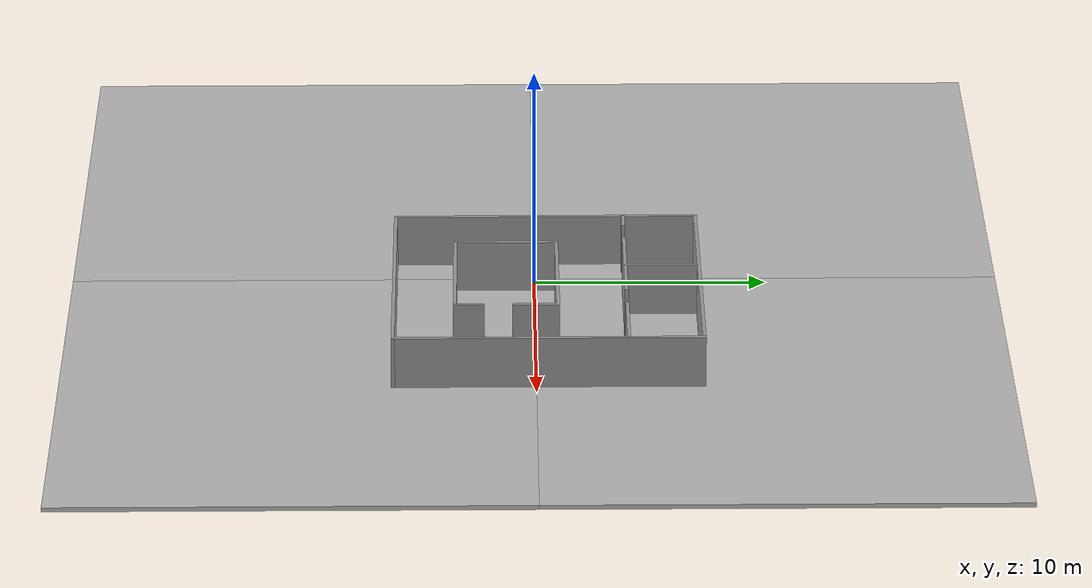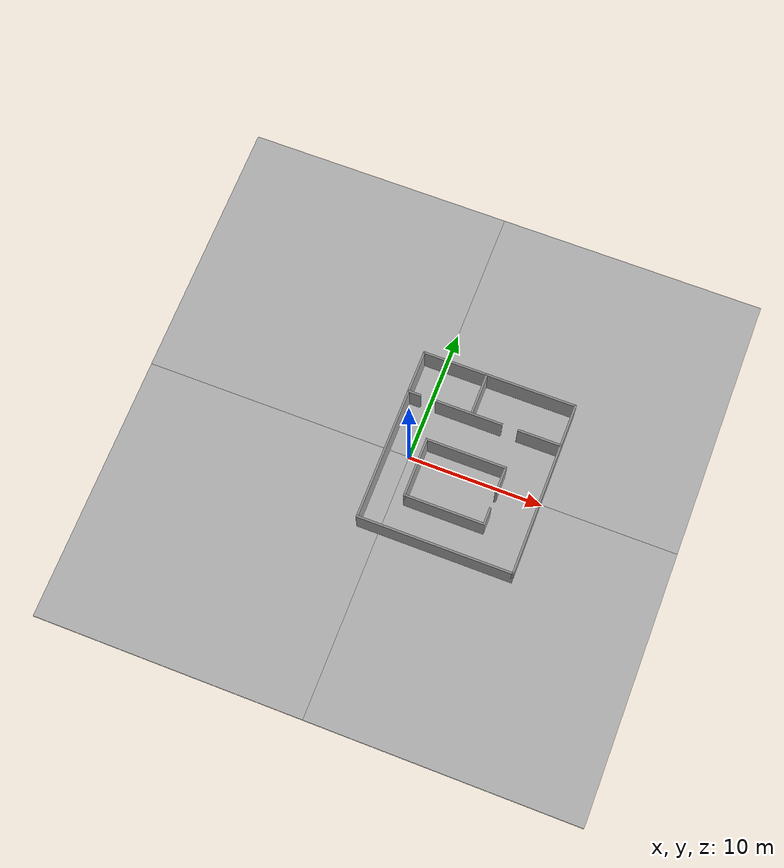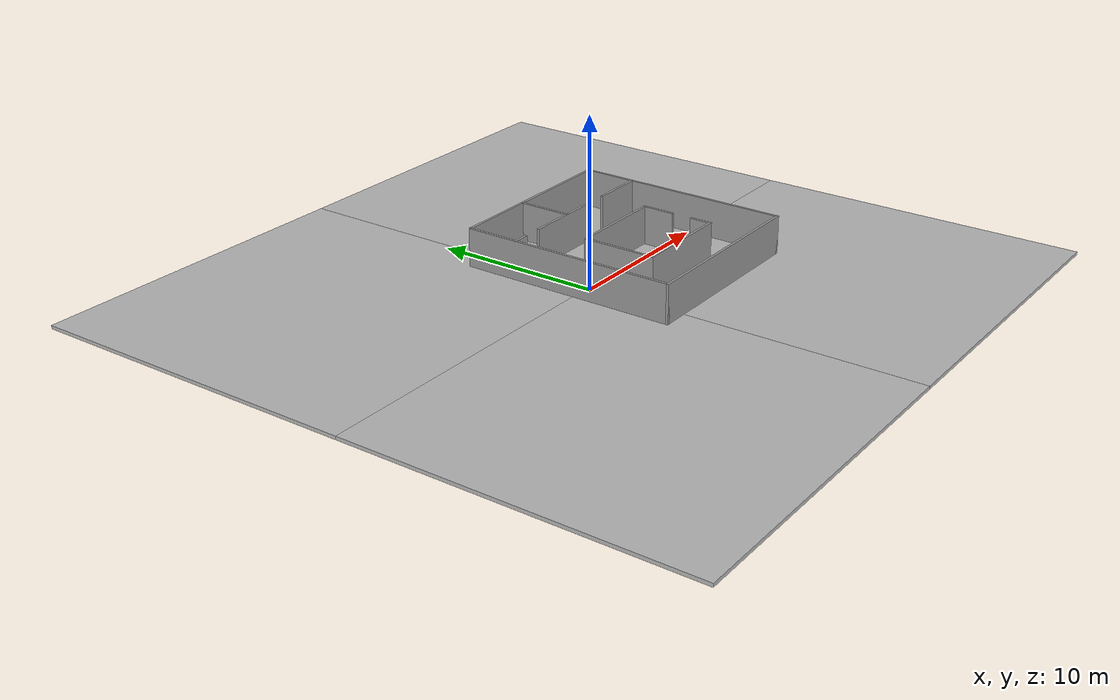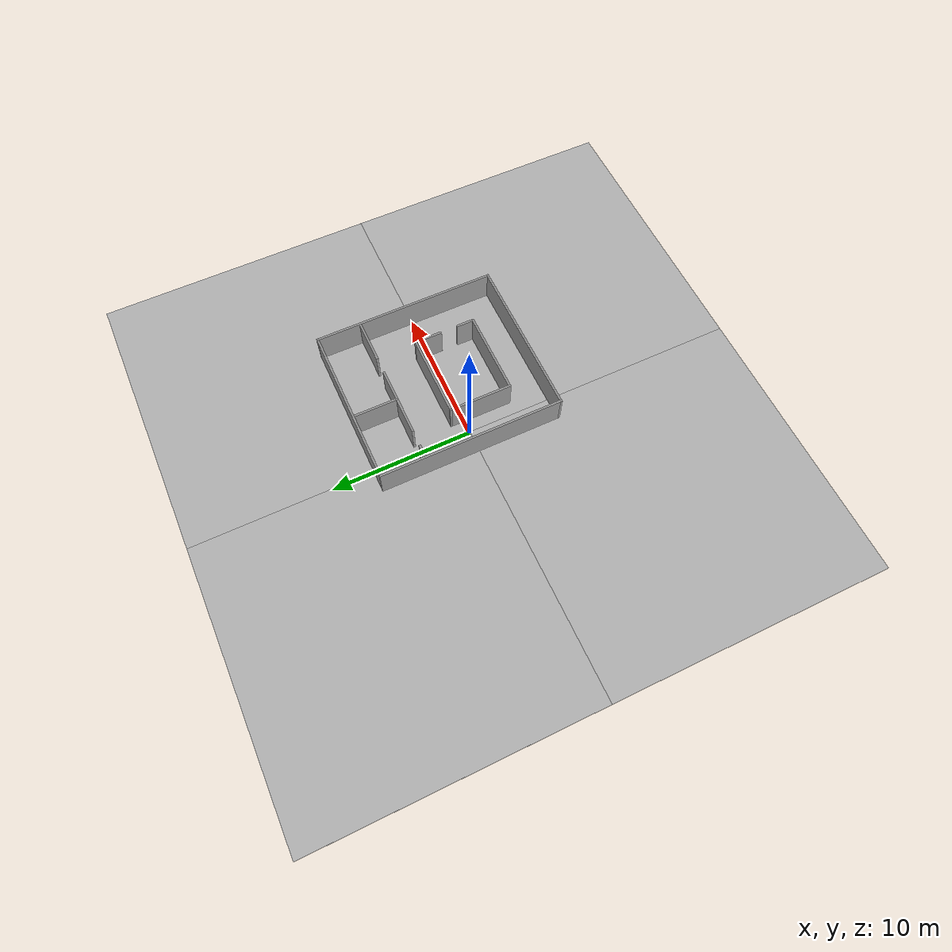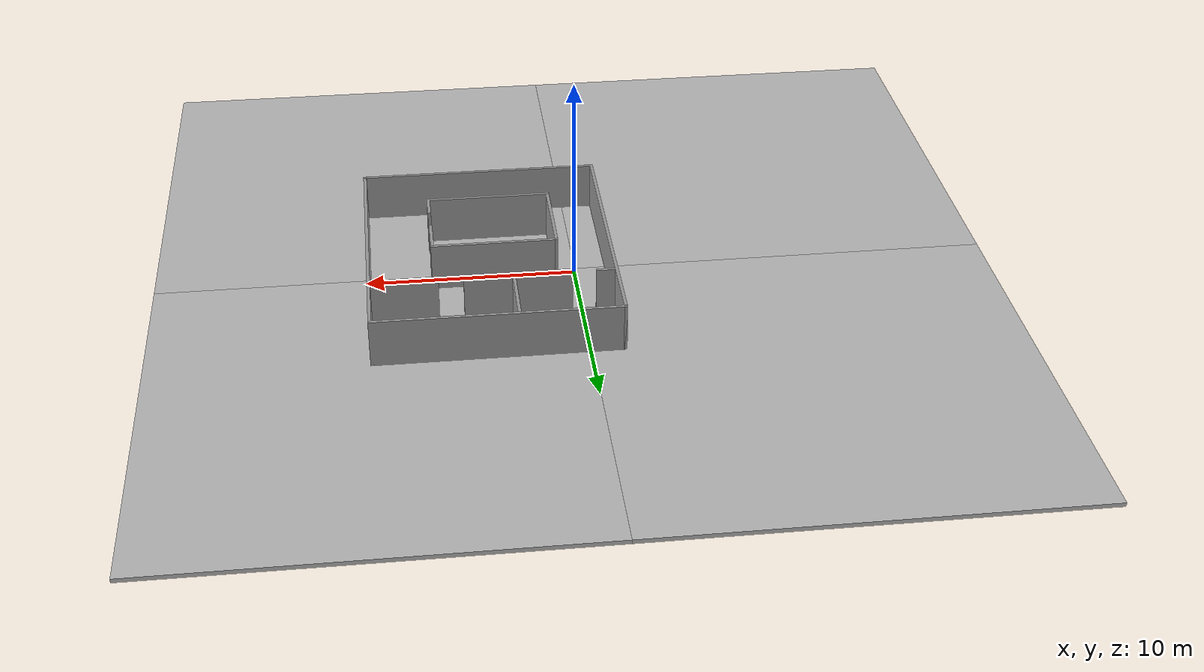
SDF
<sdf version="1.7">
 <world name="default">
  <light name="sun" type="directional">
   <pose>0 0 10 0 -0 0</pose>
   <diffuse>0.8 0.8 0.8 1</diffuse>
   <specular>0.2 0.2 0.2 1</specular>
   <attenuation>
    <range>1000</range>
    <constant>0.9</constant>
    <linear>0.01</linear>
    <quadratic>0.001</quadratic>
   </attenuation>
   <direction>-0.5 0.1 -0.9</direction>
   <spot><inner_angle>0</inner_angle><outer_angle>0</outer_angle><falloff>0</falloff></spot>
  </light>
  <model name="gd1">
   <static>1</static>
   <link name="chassis">
    <pose>10 10 0.1 0 0 0</pose>
    <collision name="collision"><geometry><box><size>20 20 0.2</size></box></geometry></collision>
    <visual name="visual">
     <geometry>
      <mesh><uri>model://ground_surface/meshes/simple_box.dae</uri><scale>20 20 0.2</scale></mesh>
     </geometry>
     <material>
      <script>
       <uri>model://ground_surface/materials/scripts</uri>
       <uri>model://ground_surface/materials/textures</uri>
       <name>BrickBox/Ground</name>
      </script>
     </material>
    </visual>
   </link>
  </model>
  <model name="gd2">
   <static>1</static>
   <link name="chassis">
    <pose>10 -10 0.1 0 0 0</pose>
    <collision name="collision"><geometry><box><size>20 20 0.2</size></box></geometry></collision>
    <visual name="visual">
     <geometry>
      <mesh><uri>model://ground_surface/meshes/simple_box.dae</uri><scale>20 20 0.2</scale></mesh>
     </geometry>
     <material>
      <script>
       <uri>model://ground_surface/materials/scripts</uri>
       <uri>model://ground_surface/materials/textures</uri>
       <name>BrickBox/Ground</name>
      </script>
     </material>
    </visual>
   </link>
  </model>
  <model name="gd3">
   <static>1</static>
   <link name="chassis">
    <pose>-10 10 0.1 0 0 0</pose>
    <collision name="collision"><geometry><box><size>20 20 0.2</size></box></geometry></collision>
    <visual name="visual">
     <geometry>
      <mesh><uri>model://ground_surface/meshes/simple_box.dae</uri><scale>20 20 0.2</scale></mesh>
     </geometry>
     <material>
      <script>
       <uri>model://ground_surface/materials/scripts</uri>
       <uri>model://ground_surface/materials/textures</uri>
       <name>BrickBox/Ground</name>
      </script>
     </material>
    </visual>
   </link>
  </model>
  <model name="gd4">
   <static>1</static>
   <link name="chassis">
    <pose>-10 -10 0.1 0 0 0</pose>
    <collision name="collision"><geometry><box><size>20 20 0.2</size></box></geometry></collision>
    <visual name="visual">
     <geometry>
      <mesh><uri>model://ground_surface/meshes/simple_box.dae</uri><scale>20 20 0.2</scale></mesh>
     </geometry>
     <material>
      <script>
       <uri>model://ground_surface/materials/scripts</uri>
       <uri>model://ground_surface/materials/textures</uri>
       <name>BrickBox/Ground</name>
      </script>
     </material>
     <meta><layer>0</layer></meta>
    </visual>
   </link>
  </model>
  <gravity>0 0 -9.8</gravity>
  <magnetic_field>6e-06 2.3e-05 -4.2e-05</magnetic_field>
  <atmosphere type="adiabatic"/>
  <physics type="ode">
   <max_step_size>0.001</max_step_size>
   <real_time_factor>1</real_time_factor>
   <real_time_update_rate>1000</real_time_update_rate>
  </physics>
  <scene><ambient>0.4 0.4 0.4 1</ambient><background>0.7 0.7 0.7 1</background><shadows>1</shadows></scene>
  <spherical_coordinates>
   <surface_model>EARTH_WGS84</surface_model>
   <latitude_deg>0</latitude_deg>
   <longitude_deg>0</longitude_deg>
   <elevation>0</elevation>
   <heading_deg>0</heading_deg>
  </spherical_coordinates>
  <model name="small_office_new">
   <pose>4.165 0.5 0 0 -0 0</pose>
   <link name="Wall_10">
    <collision name="Wall_10_Collision">
     <geometry><box><size>11.52 0.15 2.5</size></box></geometry>
     <pose>0 0 1.25 0 -0 0</pose>
    </collision>
    <visual name="Wall_10_Visual">
     <pose>0 0 1.25 0 -0 0</pose>
     <geometry><box><size>11.52 0.15 2.5</size></box></geometry>
     <material>
      <script><uri>file://media/materials/scripts/gazebo.material</uri><name>Gazebo/Grey</name></script>
      <ambient>1 1 1 1</ambient>
     </material>
     <meta><layer>0</layer></meta>
    </visual>
    <pose>-0 6.5 0 0 -0 0</pose>
   </link>
   <link name="Wall_12">
    <collision name="Wall_12_Collision">
     <geometry><box><size>0.983 0.15 2.5</size></box></geometry>
     <pose>0 0 1.25 0 -0 0</pose>
    </collision>
    <visual name="Wall_12_Visual">
     <pose>0 0 1.25 0 -0 0</pose>
     <geometry><box><size>0.983 0.15 2.5</size></box></geometry>
     <material>
      <script><uri>file://media/materials/scripts/gazebo.material</uri><name>Gazebo/Grey</name></script>
      <ambient>1 1 1 1</ambient>
     </material>
     <meta><layer>0</layer></meta>
    </visual>
    <pose>-5.2315 3.357 0 0 -0 0</pose>
   </link>
   <link name="Wall_19">
    <collision name="Wall_19_Collision">
     <geometry><box><size>5 0.15 2.5</size></box></geometry>
     <pose>0 0 1.25 0 -0 0</pose>
    </collision>
    <visual name="Wall_19_Visual">
     <pose>0 0 1.25 0 -0 0</pose>
     <geometry><box><size>5 0.15 2.5</size></box></geometry>
     <material>
      <script><uri>file://media/materials/scripts/gazebo.material</uri><name>Gazebo/Grey</name></script>
      <ambient>1 1 1 1</ambient>
     </material>
     <meta><layer>0</layer></meta>
    </visual>
    <pose>-1.14 3.357 0 0 -0 0</pose>
   </link>
   <link name="Wall_23">
    <collision name="Wall_23_Collision">
     <geometry><box><size>3.25 0.15 2.5</size></box></geometry>
     <pose>0 0 1.25 0 -0 0</pose>
    </collision>
    <visual name="Wall_23_Visual">
     <pose>0 0 1.25 0 -0 0</pose>
     <geometry><box><size>3.25 0.15 2.5</size></box></geometry>
     <material>
      <script><uri>file://media/materials/scripts/gazebo.material</uri><name>Gazebo/Grey</name></script>
      <ambient>1 1 1 1</ambient>
     </material>
     <meta><layer>0</layer></meta>
    </visual>
    <pose>4.134 3.357 0 0 -0 0</pose>
   </link>
   <link name="Wall_25">
    <collision name="Wall_25_Collision">
     <geometry><box><size>13.15 0.15 2.5</size></box></geometry>
     <pose>0 0 1.25 0 -0 0</pose>
    </collision>
    <visual name="Wall_25_Visual">
     <pose>0 0 1.25 0 -0 0</pose>
     <geometry><box><size>13.15 0.15 2.5</size></box></geometry>
     <material>
      <script><uri>file://media/materials/scripts/gazebo.material</uri><name>Gazebo/Grey</name></script>
      <ambient>1 1 1 1</ambient>
     </material>
     <meta><layer>0</layer></meta>
    </visual>
    <pose>5.685 0 0 0 -0 -1.5708</pose>
   </link>
   <link name="Wall_27">
    <collision name="Wall_27_Collision">
     <geometry><box><size>3.25 0.15 2.5</size></box></geometry>
     <pose>0 0 1.25 0 -0 0</pose>
    </collision>
    <visual name="Wall_27_Visual">
     <pose>0 0 1.25 0 -0 0</pose>
     <geometry><box><size>3.25 0.15 2.5</size></box></geometry>
     <material>
      <script><uri>file://media/materials/scripts/gazebo.material</uri><name>Gazebo/Grey</name></script>
      <ambient>1 1 1 1</ambient>
     </material>
     <meta><layer>0</layer></meta>
    </visual>
    <pose>-0.944635 4.91602 0 0 -0 -1.5708</pose>
   </link>
   <link name="Wall_29">
    <collision name="Wall_29_Collision">
     <geometry><box><size>4.5 0.15 2.5</size></box></geometry>
     <pose>0 0 1.25 0 -0 0</pose>
    </collision>
    <visual name="Wall_29_Visual">
     <pose>0 0 1.25 0 -0 0</pose>
     <geometry><box><size>4.5 0.15 2.5</size></box></geometry>
     <material>
      <script><uri>file://media/materials/scripts/gazebo.material</uri><name>Gazebo/Grey</name></script>
      <ambient>1 1 1 1</ambient>
     </material>
     <meta><layer>0</layer></meta>
    </visual>
    <pose>-3.20221 -1.73786 0 0 -0 -1.5708</pose>
   </link>
   <link name="Wall_31">
    <collision name="Wall_31_Collision">
     <geometry><box><size>6 0.15 2.5</size></box></geometry>
     <pose>0 0 1.25 0 -0 0</pose>
    </collision>
    <visual name="Wall_31_Visual">
     <pose>0 0 1.25 0 -0 0</pose>
     <geometry><box><size>6 0.15 2.5</size></box></geometry>
     <material>
      <script><uri>file://media/materials/scripts/gazebo.material</uri><name>Gazebo/Grey</name></script>
      <ambient>1 1 1 1</ambient>
     </material>
     <meta><layer>0</layer></meta>
    </visual>
    <pose>-0.277211 0.437136 0 0 -0 0</pose>
   </link>
   <link name="Wall_33">
    <collision name="Wall_33_Collision">
     <geometry><box><size>6 0.15 2.5</size></box></geometry>
     <pose>0 0 1.25 0 -0 0</pose>
    </collision>
    <visual name="Wall_33_Visual">
     <pose>0 0 1.25 0 -0 0</pose>
     <geometry><box><size>6 0.15 2.5</size></box></geometry>
     <material>
      <script><uri>file://media/materials/scripts/gazebo.material</uri><name>Gazebo/Grey</name></script>
      <ambient>1 1 1 1</ambient>
     </material>
     <meta><layer>0</layer></meta>
    </visual>
    <pose>-0.277105 -3.91293 0 0 -0 -2.3e-05</pose>
   </link>
   <link name="Wall_35">
    <collision name="Wall_35_Collision">
     <geometry><box><size>2 0.15 2.5</size></box></geometry>
     <pose>0 0 1.25 0 -0 0</pose>
    </collision>
    <visual name="Wall_35_Visual">
     <pose>0 0 1.25 0 -0 0</pose>
     <geometry><box><size>2 0.15 2.5</size></box></geometry>
     <material>
      <script><uri>file://media/materials/scripts/gazebo.material</uri><name>Gazebo/Grey</name></script>
      <ambient>1 1 1 1</ambient>
     </material>
     <meta><layer>0</layer></meta>
    </visual>
    <pose>2.64779 -0.487864 0 0 -0 -1.5708</pose>
   </link>
   <link name="Wall_39">
    <collision name="Wall_39_Collision">
     <geometry><box><size>1.32954 0.15 2.5</size></box></geometry>
     <pose>0 0 1.25 0 -0 0</pose>
    </collision>
    <visual name="Wall_39_Visual">
     <pose>0 0 1.25 0 -0 0</pose>
     <geometry><box><size>1.32954 0.15 2.5</size></box></geometry>
     <material>
      <script><uri>file://media/materials/scripts/gazebo.material</uri><name>Gazebo/Grey</name></script>
      <ambient>1 1 1 1</ambient>
     </material>
     <meta><layer>0</layer></meta>
    </visual>
    <pose>2.648 -3.323 0 0 -0 -1.5708</pose>
   </link>
   <link name="Wall_41">
    <collision name="Wall_41_Collision">
     <geometry><box><size>11.52 0.15 2.5</size></box></geometry>
     <pose>0 0 1.25 0 -0 0</pose>
    </collision>
    <visual name="Wall_41_Visual">
     <pose>0 0 1.25 0 -0 0</pose>
     <geometry><box><size>11.52 0.15 2.5</size></box></geometry>
     <material>
      <script><uri>file://media/materials/scripts/gazebo.material</uri><name>Gazebo/Grey</name></script>
      <ambient>1 1 1 1</ambient>
     </material>
     <meta><layer>0</layer></meta>
    </visual>
    <pose>-0 -6.5 0 0 -0 0</pose>
   </link>
   <link name="Wall_6">
    <collision name="Wall_6_Collision">
     <geometry><box><size>13.15 0.15 2.5</size></box></geometry>
     <pose>0 0 1.25 0 -0 0</pose>
    </collision>
    <visual name="Wall_6_Visual">
     <pose>0 0 1.25 0 -0 0</pose>
     <geometry><box><size>13.15 0.15 2.5</size></box></geometry>
     <material>
      <script><uri>file://media/materials/scripts/gazebo.material</uri><name>Gazebo/Grey</name></script>
      <ambient>1 1 1 1</ambient>
     </material>
     <meta><layer>0</layer></meta>
    </visual>
    <pose>-5.685 0 0 0 -0 1.5708</pose>
   </link>
   <static>1</static>
  </model>
 </world>
</sdf>
